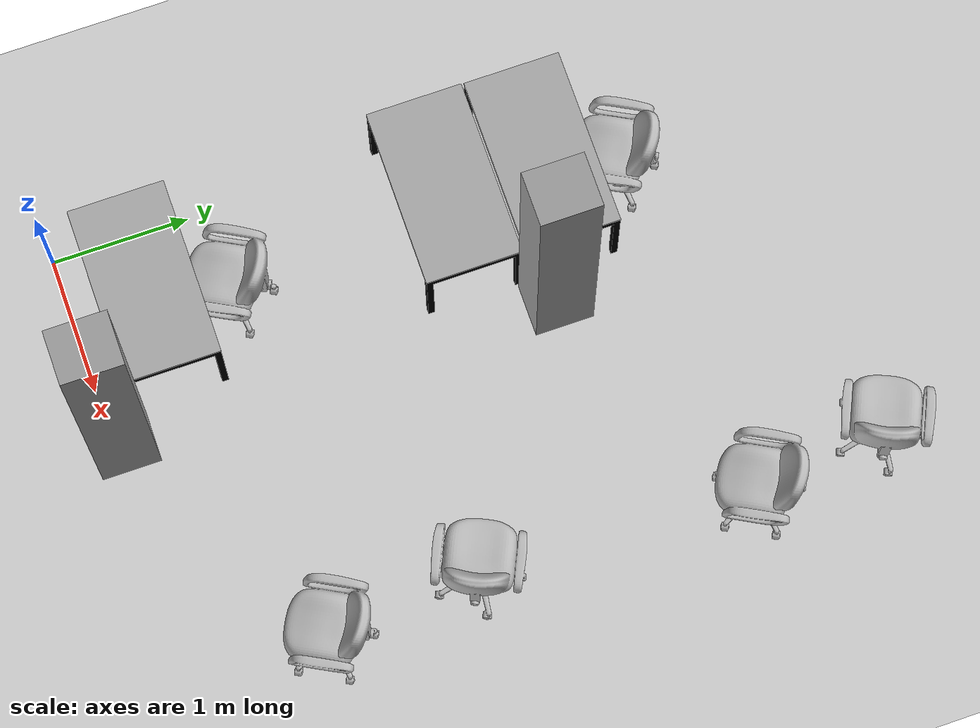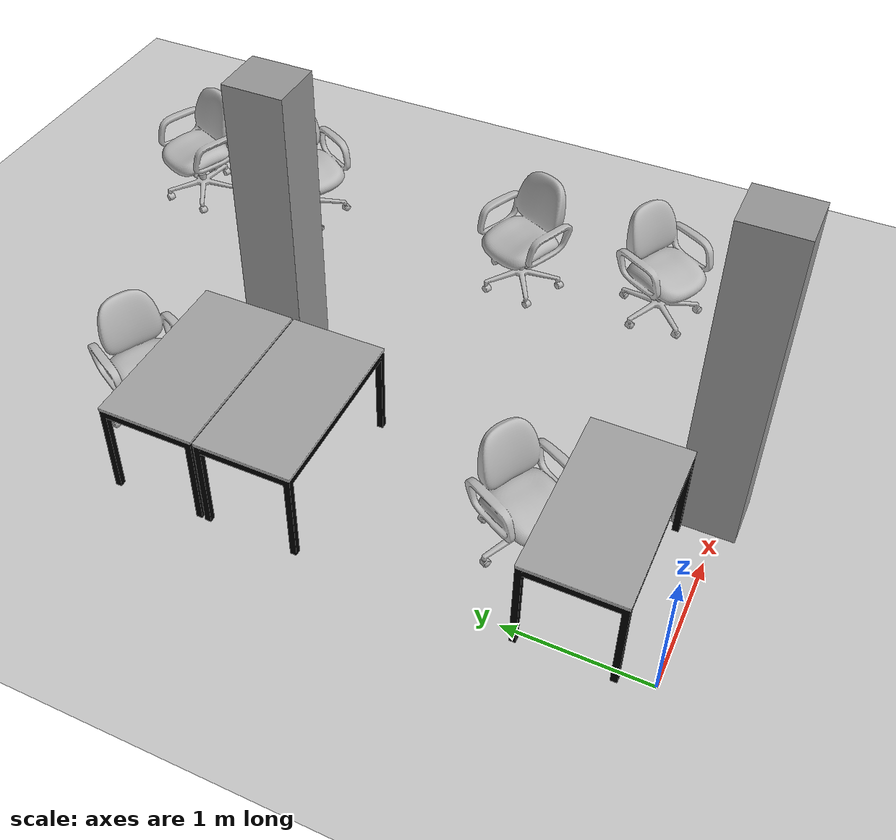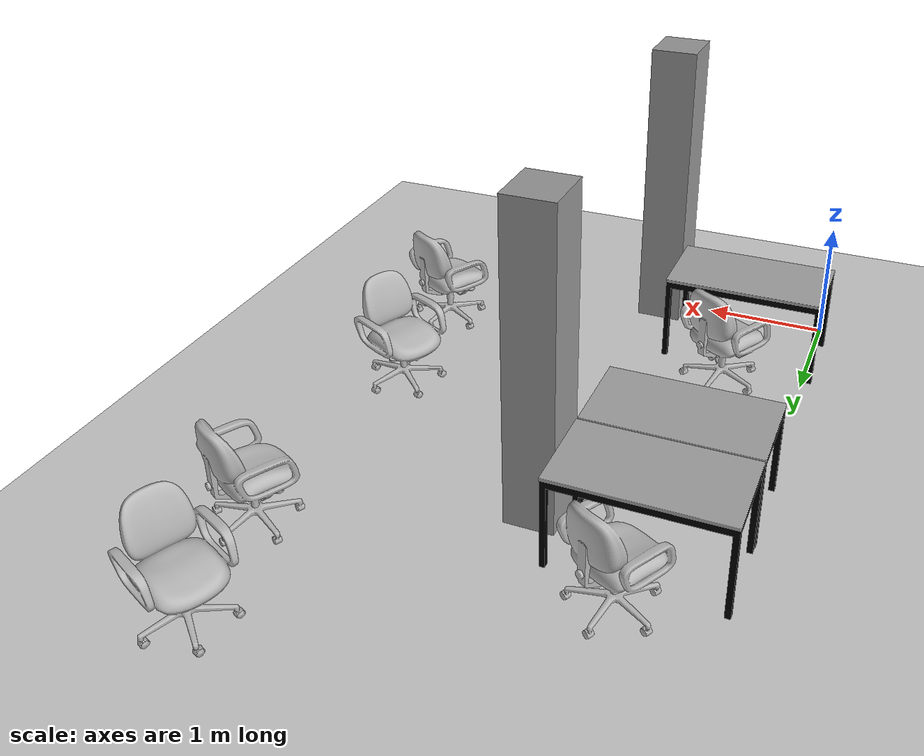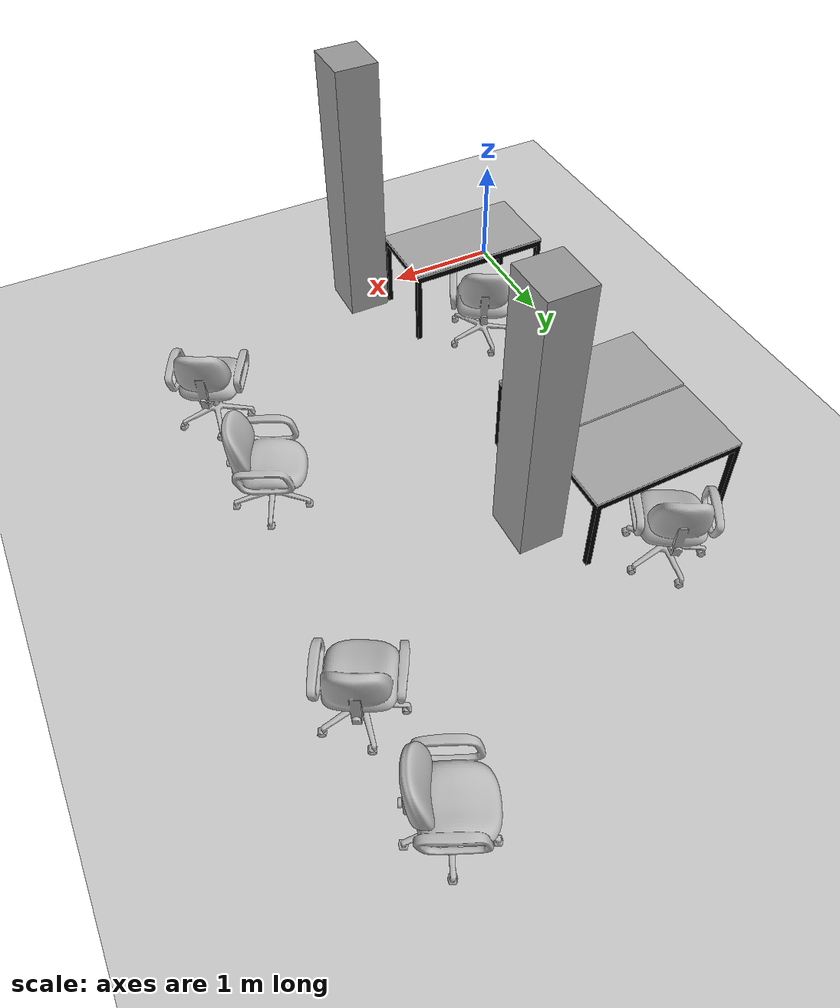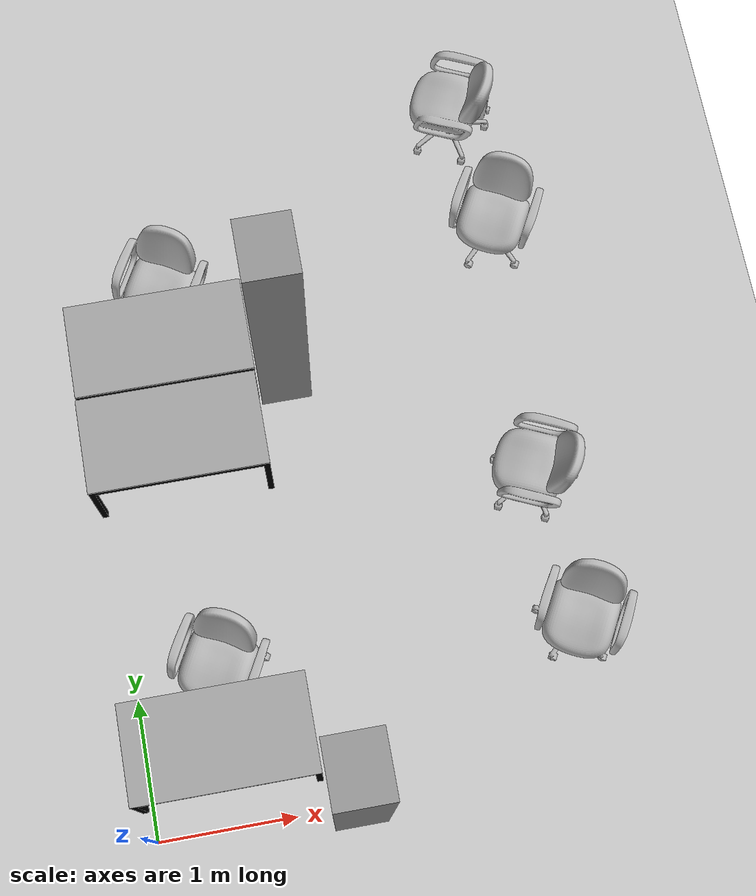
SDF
<sdf version="1.6">
 <world name="default">
  <model name="ground_plane">
   <static>1</static>
   <link name="link">
    <collision name="collision">
     <geometry><plane><normal>0 0 1</normal><size>100 100</size></plane></geometry>
     <surface><friction><ode><mu>100</mu><mu2>50</mu2></ode></friction></surface>
    </collision>
    <visual name="visual">
     <cast_shadows>0</cast_shadows>
     <geometry><plane><normal>0 0 1</normal><size>100 100</size></plane></geometry>
     <material>
      <script><uri>file://media/materials/scripts/gazebo.material</uri><name>Gazebo/Grey</name></script>
     </material>
    </visual>
   </link>
  </model>
  <model name="012_pillar_clone">
   <pose>1.4352 0.075 0 0 0 -1.5708</pose>
   <link name="Wall_6">
    <collision name="Wall_6_Collision">
     <geometry><box><size>0.43 0.38 2.5</size></box></geometry>
     <pose>0 0 1.25 0 -0 0</pose>
    </collision>
    <visual name="Wall_6_Visual">
     <pose>0 0 1.25 0 -0 0</pose>
     <geometry><box><size>0.43 0.38 2.5</size></box></geometry>
     <material>
      <script><uri>file://media/materials/scripts/gazebo.material</uri><name>Gazebo/Grey</name></script>
      <ambient>1 1 1 1</ambient>
     </material>
    </visual>
   </link>
   <static>1</static>
  </model>
  <model name="012_pillar_clone_clone">
   <pose>1.4352 3.275 0 0 0 -1.5708</pose>
   <link name="Wall_6">
    <collision name="Wall_6_Collision">
     <geometry><box><size>0.43 0.38 2.5</size></box></geometry>
     <pose>0 0 1.25 0 -0 0</pose>
    </collision>
    <visual name="Wall_6_Visual">
     <pose>0 0 1.25 0 -0 0</pose>
     <geometry><box><size>0.43 0.38 2.5</size></box></geometry>
     <material>
      <script><uri>file://media/materials/scripts/gazebo.material</uri><name>Gazebo/Grey</name></script>
      <ambient>1 1 1 1</ambient>
     </material>
    </visual>
   </link>
   <static>1</static>
  </model>
  <model name="desk_clone">
   <static>1</static>
   <link name="desk">
    <collision name="surface">
     <pose>0 0 0.7 0 -0 0</pose>
     <geometry><box><size>0.7 1.3 0.08</size></box></geometry>
     <surface><friction><ode><mu>0.6</mu><mu2>0.6</mu2></ode></friction></surface>
    </collision>
    <collision name="left_front_leg">
     <pose>0.3283 0.6266 0.33 0 -0 0</pose>
     <geometry><box><size>0.0434 0.0467 0.66</size></box></geometry>
    </collision>
    <collision name="right_front_leg">
     <pose>0.3283 -0.6266 0.33 0 -0 0</pose>
     <geometry><box><size>0.0434 0.0467 0.66</size></box></geometry>
    </collision>
    <collision name="left_back_leg">
     <pose>-0.3283 0.6266 0.33 0 -0 0</pose>
     <geometry><box><size>0.0434 0.0467 0.66</size></box></geometry>
    </collision>
    <collision name="right_back_leg">
     <pose>-0.3283 -0.6266 0.33 0 -0 0</pose>
     <geometry><box><size>0.0434 0.0467 0.66</size></box></geometry>
    </collision>
    <visual name="desk_mesh">
     <geometry><mesh><uri>model://desk/meshes/model.dae</uri><scale>1 1 1</scale></mesh></geometry>
    </visual>
   </link>
   <pose>0.572261 0.56534 0 0 0 -1.5708</pose>
  </model>
  <model name="desk_clone_clone">
   <static>1</static>
   <link name="desk">
    <collision name="surface">
     <pose>0 0 0.7 0 -0 0</pose>
     <geometry><box><size>0.7 1.3 0.08</size></box></geometry>
     <surface><friction><ode><mu>0.6</mu><mu2>0.6</mu2></ode></friction></surface>
    </collision>
    <collision name="left_front_leg">
     <pose>0.3283 0.6266 0.33 0 -0 0</pose>
     <geometry><box><size>0.0434 0.0467 0.66</size></box></geometry>
    </collision>
    <collision name="right_front_leg">
     <pose>0.3283 -0.6266 0.33 0 -0 0</pose>
     <geometry><box><size>0.0434 0.0467 0.66</size></box></geometry>
    </collision>
    <collision name="left_back_leg">
     <pose>-0.3283 0.6266 0.33 0 -0 0</pose>
     <geometry><box><size>0.0434 0.0467 0.66</size></box></geometry>
    </collision>
    <collision name="right_back_leg">
     <pose>-0.3283 -0.6266 0.33 0 -0 0</pose>
     <geometry><box><size>0.0434 0.0467 0.66</size></box></geometry>
    </collision>
    <visual name="desk_mesh">
     <geometry><mesh><uri>model://desk/meshes/model.dae</uri><scale>1 1 1</scale></mesh></geometry>
    </visual>
   </link>
   <pose>0.578461 2.74293 0 0 0 -1.5708</pose>
  </model>
  <model name="desk_clone_clone_clone">
   <static>1</static>
   <link name="desk">
    <collision name="surface">
     <pose>0 0 0.7 0 -0 0</pose>
     <geometry><box><size>0.7 1.3 0.08</size></box></geometry>
     <surface><friction><ode><mu>0.6</mu><mu2>0.6</mu2></ode></friction></surface>
    </collision>
    <collision name="left_front_leg">
     <pose>0.3283 0.6266 0.33 0 -0 0</pose>
     <geometry><box><size>0.0434 0.0467 0.66</size></box></geometry>
    </collision>
    <collision name="right_front_leg">
     <pose>0.3283 -0.6266 0.33 0 -0 0</pose>
     <geometry><box><size>0.0434 0.0467 0.66</size></box></geometry>
    </collision>
    <collision name="left_back_leg">
     <pose>-0.3283 0.6266 0.33 0 -0 0</pose>
     <geometry><box><size>0.0434 0.0467 0.66</size></box></geometry>
    </collision>
    <collision name="right_back_leg">
     <pose>-0.3283 -0.6266 0.33 0 -0 0</pose>
     <geometry><box><size>0.0434 0.0467 0.66</size></box></geometry>
    </collision>
    <visual name="desk_mesh">
     <geometry><mesh><uri>model://desk/meshes/model.dae</uri><scale>1 1 1</scale></mesh></geometry>
    </visual>
   </link>
   <pose>0.582362 3.4608 0 0 0 -1.5708</pose>
  </model>
  <model name="swivel_chair_clone_0_clone_0">
   <static>1</static>
   <link name="swivel_chair">
    <collision name="swivel_chair">
     <geometry><mesh><uri>model://swivel_chair/meshes/model.dae</uri><scale>1 1 1</scale></mesh></geometry>
    </collision>
    <visual name="swivel_chair_mesh">
     <geometry><mesh><uri>model://swivel_chair/meshes/model.dae</uri><scale>1 1 1</scale></mesh></geometry>
     <material>
      <script>
       <uri>model://swivel_chair/materials/scripts</uri>
       <uri>model://swivel_chair/materials/textures</uri>
       <name>Swivel_chair/Fabric</name>
      </script>
     </material>
    </visual>
   </link>
   <pose>0.671307 1.17009 0 0 0 -0.5</pose>
  </model>
  <model name="swivel_chair_clone_0_clone_1">
   <static>1</static>
   <link name="swivel_chair">
    <collision name="swivel_chair">
     <geometry><mesh><uri>model://swivel_chair/meshes/model.dae</uri><scale>1 1 1</scale></mesh></geometry>
    </collision>
    <visual name="swivel_chair_mesh">
     <geometry><mesh><uri>model://swivel_chair/meshes/model.dae</uri><scale>1 1 1</scale></mesh></geometry>
     <material>
      <script>
       <uri>model://swivel_chair/materials/scripts</uri>
       <uri>model://swivel_chair/materials/textures</uri>
       <name>Swivel_chair/Fabric</name>
      </script>
     </material>
    </visual>
   </link>
   <pose>0.674923 4.02786 0 0 0 -0.5</pose>
  </model>
  <model name="swivel_chair_clone_0_clone_3">
   <static>1</static>
   <link name="swivel_chair">
    <collision name="swivel_chair">
     <geometry><mesh><uri>model://swivel_chair/meshes/model.dae</uri><scale>1 1 1</scale></mesh></geometry>
    </collision>
    <visual name="swivel_chair_mesh">
     <geometry><mesh><uri>model://swivel_chair/meshes/model.dae</uri><scale>1 1 1</scale></mesh></geometry>
     <material>
      <script>
       <uri>model://swivel_chair/materials/scripts</uri>
       <uri>model://swivel_chair/materials/textures</uri>
       <name>Swivel_chair/Fabric</name>
      </script>
     </material>
    </visual>
   </link>
   <pose>3.24752 1.05154 0 0 0 -0.5</pose>
  </model>
  <model name="swivel_chair_clone_0_clone_4">
   <static>1</static>
   <link name="swivel_chair">
    <collision name="swivel_chair">
     <geometry><mesh><uri>model://swivel_chair/meshes/model.dae</uri><scale>1 1 1</scale></mesh></geometry>
    </collision>
    <visual name="swivel_chair_mesh">
     <geometry><mesh><uri>model://swivel_chair/meshes/model.dae</uri><scale>1 1 1</scale></mesh></geometry>
     <material>
      <script>
       <uri>model://swivel_chair/materials/scripts</uri>
       <uri>model://swivel_chair/materials/textures</uri>
       <name>Swivel_chair/Fabric</name>
      </script>
     </material>
    </visual>
   </link>
   <pose>3.2528 4.16498 0 0 0 -0.5</pose>
  </model>
  <model name="swivel_chair_clone_0_clone_clone">
   <static>1</static>
   <link name="swivel_chair">
    <collision name="swivel_chair">
     <geometry><mesh><uri>model://swivel_chair/meshes/model.dae</uri><scale>1 1 1</scale></mesh></geometry>
    </collision>
    <visual name="swivel_chair_mesh">
     <geometry><mesh><uri>model://swivel_chair/meshes/model.dae</uri><scale>1 1 1</scale></mesh></geometry>
     <material>
      <script>
       <uri>model://swivel_chair/materials/scripts</uri>
       <uri>model://swivel_chair/materials/textures</uri>
       <name>Swivel_chair/Fabric</name>
      </script>
     </material>
    </visual>
   </link>
   <pose>3.16746 2.09682 0 0 0 -2</pose>
  </model>
  <model name="swivel_chair_clone_0_clone_clone_0">
   <static>1</static>
   <link name="swivel_chair">
    <collision name="swivel_chair">
     <geometry><mesh><uri>model://swivel_chair/meshes/model.dae</uri><scale>1 1 1</scale></mesh></geometry>
    </collision>
    <visual name="swivel_chair_mesh">
     <geometry><mesh><uri>model://swivel_chair/meshes/model.dae</uri><scale>1 1 1</scale></mesh></geometry>
     <material>
      <script>
       <uri>model://swivel_chair/materials/scripts</uri>
       <uri>model://swivel_chair/materials/textures</uri>
       <name>Swivel_chair/Fabric</name>
      </script>
     </material>
    </visual>
   </link>
   <pose>3.12567 5.06898 0 0 0 -2</pose>
  </model>
 </world>
</sdf>
